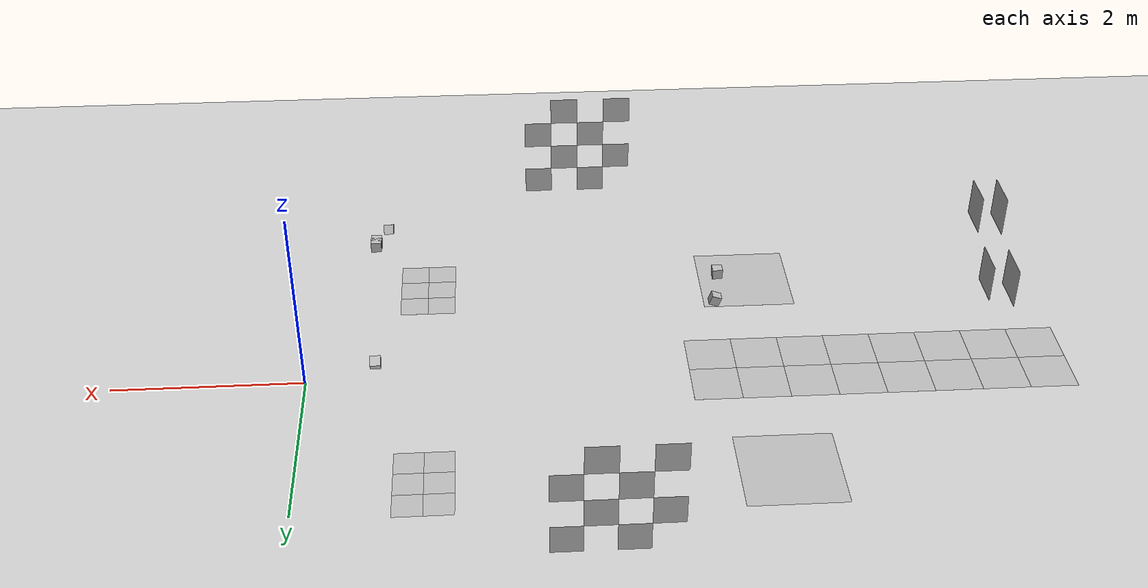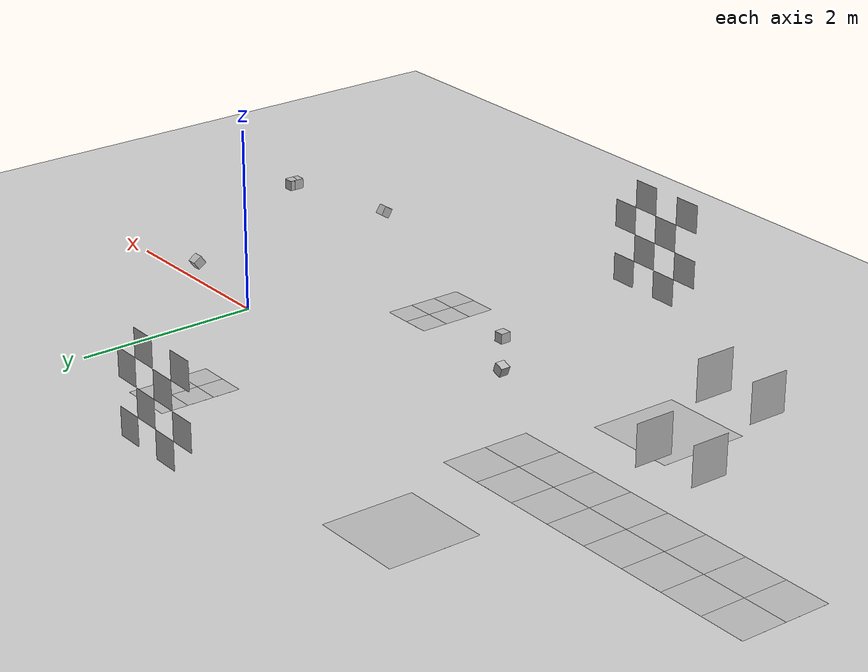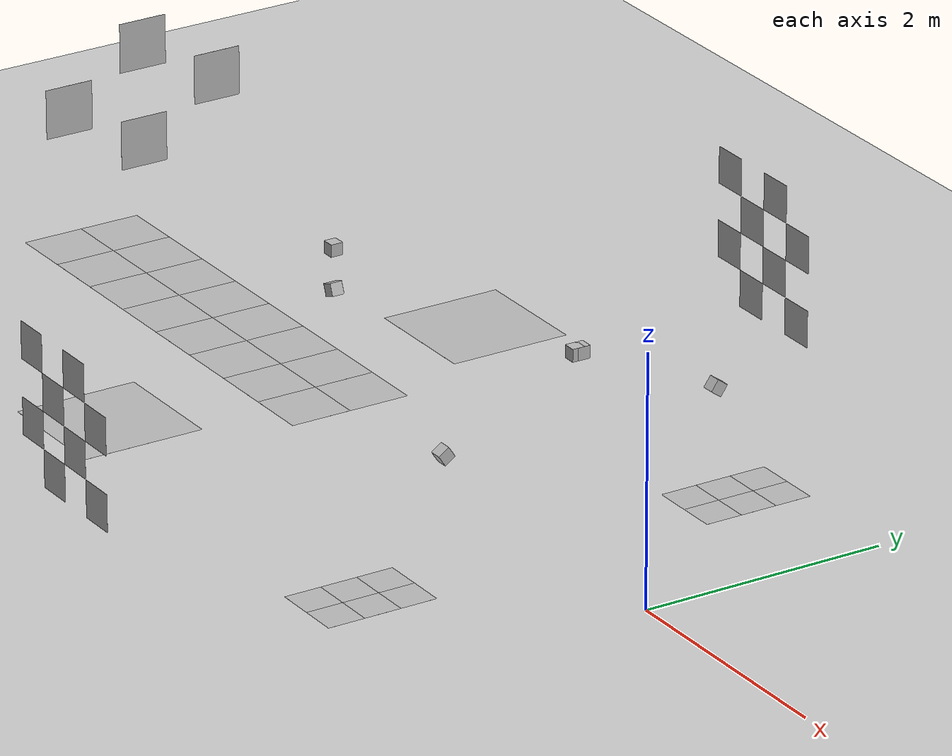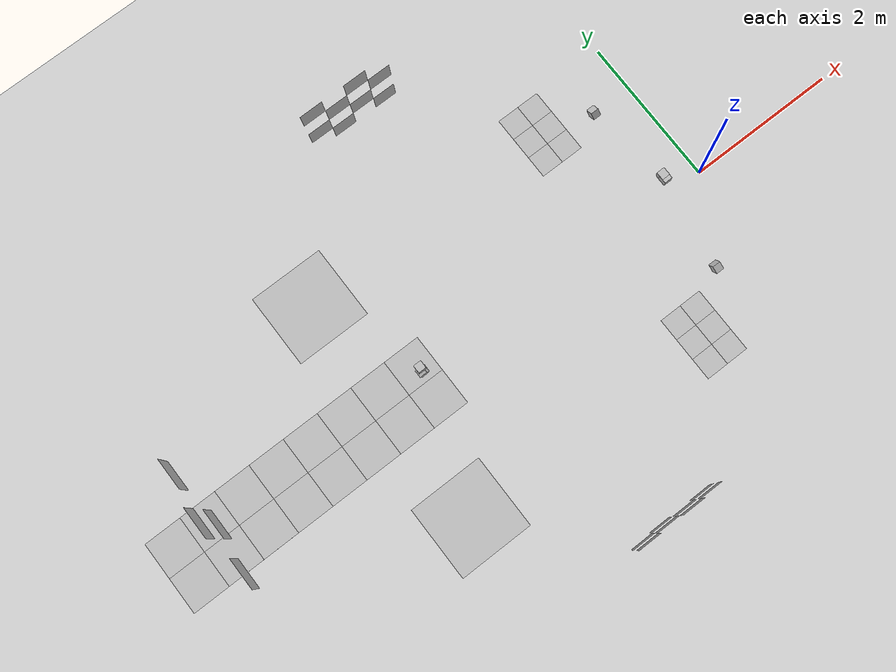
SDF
<sdf version="1.7">
 <world name="default">
  <model name="ground_plane">
   <pose>1.6 0 -0.001 0 -0 0</pose>
   <static>1</static>
   <link name="link">
    <collision name="collision">
     <geometry><plane><normal>0 0 1</normal><size>100 100</size></plane></geometry>
     <surface>
      <contact><collide_bitmask>65535</collide_bitmask></contact>
      <friction><ode><mu>100</mu><mu2>50</mu2></ode></friction>
     </surface>
    </collision>
    <visual name="visual">
     <cast_shadows>0</cast_shadows>
     <geometry><plane><normal>0 0 1</normal><size>100 100</size></plane></geometry>
     <material>
      <script><uri>file://media/materials/scripts/gazebo.material</uri><name>Gazebo/Grey</name></script>
     </material>
    </visual>
   </link>
  </model>
  <model name="Apriltag36_11_00008">
   <link name="main">
    <visual name="main_Visual">
     <geometry><box><size>0.5 0.5 0.0001</size></box></geometry>
     <material>
      <script>
       <uri>model://Apriltag36_11_00008/materials/scripts</uri>
       <uri>model://Apriltag36_11_00008/materials/textures</uri>
       <name>Apriltag36_11_00008</name>
      </script>
     </material>
    </visual>
    <collision name="collision"><geometry><box><size>0.5 0.5 0.0001</size></box></geometry></collision>
   </link>
   <static>1</static>
   <pose>-5.25 0.25 0 0 -0 0</pose>
  </model>
  <model name="Apriltag36_11_00009">
   <link name="main">
    <visual name="main_Visual">
     <geometry><box><size>0.5 0.5 0.0001</size></box></geometry>
     <material>
      <script>
       <uri>model://Apriltag36_11_00009/materials/scripts</uri>
       <uri>model://Apriltag36_11_00009/materials/textures</uri>
       <name>Apriltag36_11_00009</name>
      </script>
     </material>
    </visual>
    <collision name="collision"><geometry><box><size>0.5 0.5 0.0001</size></box></geometry></collision>
   </link>
   <static>1</static>
   <pose>-5.75 0.25 0 0 -0 0</pose>
  </model>
  <model name="Apriltag36_11_00010">
   <link name="main">
    <visual name="main_Visual">
     <geometry><box><size>0.5 0.5 0.0001</size></box></geometry>
     <material>
      <script>
       <uri>model://Apriltag36_11_00010/materials/scripts</uri>
       <uri>model://Apriltag36_11_00010/materials/textures</uri>
       <name>Apriltag36_11_00010</name>
      </script>
     </material>
    </visual>
    <collision name="collision"><geometry><box><size>0.5 0.5 0.0001</size></box></geometry></collision>
   </link>
   <static>1</static>
   <pose>-6.25 0.25 0 0 -0 0</pose>
  </model>
  <model name="Apriltag36_11_00011">
   <link name="main">
    <visual name="main_Visual">
     <geometry><box><size>0.5 0.5 0.0001</size></box></geometry>
     <material>
      <script>
       <uri>model://Apriltag36_11_00011/materials/scripts</uri>
       <uri>model://Apriltag36_11_00011/materials/textures</uri>
       <name>Apriltag36_11_00011</name>
      </script>
     </material>
    </visual>
    <collision name="collision"><geometry><box><size>0.5 0.5 0.0001</size></box></geometry></collision>
   </link>
   <static>1</static>
   <pose>-6.75 0.25 0 0 -0 0</pose>
  </model>
  <model name="Apriltag36_11_00012">
   <link name="main">
    <visual name="main_Visual">
     <geometry><box><size>0.5 0.5 0.0001</size></box></geometry>
     <material>
      <script>
       <uri>model://Apriltag36_11_00012/materials/scripts</uri>
       <uri>model://Apriltag36_11_00012/materials/textures</uri>
       <name>Apriltag36_11_00012</name>
      </script>
     </material>
    </visual>
    <collision name="collision"><geometry><box><size>0.5 0.5 0.0001</size></box></geometry></collision>
   </link>
   <static>1</static>
   <pose>-5.25 -0.25 0 0 -0 0</pose>
  </model>
  <model name="Apriltag36_11_00013">
   <link name="main">
    <visual name="main_Visual">
     <geometry><box><size>0.5 0.5 0.0001</size></box></geometry>
     <material>
      <script>
       <uri>model://Apriltag36_11_00013/materials/scripts</uri>
       <uri>model://Apriltag36_11_00013/materials/textures</uri>
       <name>Apriltag36_11_00013</name>
      </script>
     </material>
    </visual>
    <collision name="collision"><geometry><box><size>0.5 0.5 0.0001</size></box></geometry></collision>
   </link>
   <static>1</static>
   <pose>-5.75 -0.25 0 0 -0 0</pose>
  </model>
  <model name="Apriltag36_11_00014">
   <link name="main">
    <visual name="main_Visual">
     <geometry><box><size>0.5 0.5 0.0001</size></box></geometry>
     <material>
      <script>
       <uri>model://Apriltag36_11_00014/materials/scripts</uri>
       <uri>model://Apriltag36_11_00014/materials/textures</uri>
       <name>Apriltag36_11_00014</name>
      </script>
     </material>
    </visual>
    <collision name="collision"><geometry><box><size>0.5 0.5 0.0001</size></box></geometry></collision>
   </link>
   <static>1</static>
   <pose>-6.25 -0.25 0 0 -0 0</pose>
  </model>
  <model name="Apriltag36_11_00015">
   <link name="main">
    <visual name="main_Visual">
     <geometry><box><size>0.5 0.5 0.0001</size></box></geometry>
     <material>
      <script>
       <uri>model://Apriltag36_11_00015/materials/scripts</uri>
       <uri>model://Apriltag36_11_00015/materials/textures</uri>
       <name>Apriltag36_11_00015</name>
      </script>
     </material>
    </visual>
    <collision name="collision"><geometry><box><size>0.5 0.5 0.0001</size></box></geometry></collision>
   </link>
   <static>1</static>
   <pose>-6.75 -0.25 0 0 -0 0</pose>
  </model>
  <model name="Apriltag36_11_00020">
   <link name="main">
    <pose>0 0 0 3.14159 -1.5707 -0</pose>
    <visual name="main_Visual">
     <geometry><box><size>0.4 0.4 0.0001</size></box></geometry>
     <material>
      <script>
       <uri>model://Apriltag36_11_00020/materials/scripts</uri>
       <uri>model://Apriltag36_11_00020/materials/textures</uri>
       <name>Apriltag36_11_00020</name>
      </script>
     </material>
    </visual>
    <collision name="collision"><geometry><box><size>0.4 0.4 0.0001</size></box></geometry></collision>
   </link>
   <static>1</static>
   <pose>-7 0 1.9 0 -0 0</pose>
  </model>
  <model name="Apriltag36_11_00021">
   <link name="main">
    <pose>0 0 0 3.14159 -1.5707 -0</pose>
    <visual name="main_Visual">
     <geometry><box><size>0.4 0.4 0.0001</size></box></geometry>
     <material>
      <script>
       <uri>model://Apriltag36_11_00021/materials/scripts</uri>
       <uri>model://Apriltag36_11_00021/materials/textures</uri>
       <name>Apriltag36_11_00021</name>
      </script>
     </material>
    </visual>
    <collision name="collision"><geometry><box><size>0.4 0.4 0.0001</size></box></geometry></collision>
   </link>
   <static>1</static>
   <pose>-7 0.65 1.5 0 -0 0</pose>
  </model>
  <model name="Apriltag36_11_00022">
   <link name="main">
    <pose>0 0 0 3.14159 -1.5707 -0</pose>
    <visual name="main_Visual">
     <geometry><box><size>0.4 0.4 0.0001</size></box></geometry>
     <material>
      <script>
       <uri>model://Apriltag36_11_00022/materials/scripts</uri>
       <uri>model://Apriltag36_11_00022/materials/textures</uri>
       <name>Apriltag36_11_00022</name>
      </script>
     </material>
    </visual>
    <collision name="collision"><geometry><box><size>0.4 0.4 0.0001</size></box></geometry></collision>
   </link>
   <static>1</static>
   <pose>-7 -0.65 1.5 0 -0 0</pose>
  </model>
  <model name="Apriltag36_11_00023">
   <link name="main">
    <pose>0 0 0 3.14159 -1.5707 -0</pose>
    <visual name="main_Visual">
     <geometry><box><size>0.4 0.4 0.0001</size></box></geometry>
     <material>
      <script>
       <uri>model://Apriltag36_11_00023/materials/scripts</uri>
       <uri>model://Apriltag36_11_00023/materials/textures</uri>
       <name>Apriltag36_11_00023</name>
      </script>
     </material>
    </visual>
    <collision name="collision"><geometry><box><size>0.4 0.4 0.0001</size></box></geometry></collision>
   </link>
   <static>1</static>
   <pose>-7 0 1.1 0 -0 0</pose>
  </model>
  <model name="Apriltag36_11_00034">
   <link name="main">
    <pose>0 0 0 1.5707 -1.5707 0</pose>
    <visual name="main_Visual">
     <geometry><box><size>0.3 0.3 0.0001</size></box></geometry>
     <material>
      <script>
       <uri>model://Apriltag36_11_00034/materials/scripts</uri>
       <uri>model://Apriltag36_11_00034/materials/textures</uri>
       <name>Apriltag36_11_00034</name>
      </script>
     </material>
    </visual>
    <collision name="collision"><geometry><box><size>0.5 0.5 0.0001</size></box></geometry></collision>
   </link>
   <static>1</static>
   <pose>-2.85 3 1.45 0 -0 0</pose>
  </model>
  <model name="Apriltag36_11_00035">
   <link name="main">
    <pose>0 0 0 1.5707 -1.5707 0</pose>
    <visual name="main_Visual">
     <geometry><box><size>0.3 0.3 0.0001</size></box></geometry>
     <material>
      <script>
       <uri>model://Apriltag36_11_00035/materials/scripts</uri>
       <uri>model://Apriltag36_11_00035/materials/textures</uri>
       <name>Apriltag36_11_00035</name>
      </script>
     </material>
    </visual>
    <collision name="collision"><geometry><box><size>0.5 0.5 0.0001</size></box></geometry></collision>
   </link>
   <static>1</static>
   <pose>-2.55 3 1.15 0 -0 0</pose>
  </model>
  <model name="Apriltag36_11_00036">
   <link name="main">
    <pose>0 0 0 1.5707 -1.5707 0</pose>
    <visual name="main_Visual">
     <geometry><box><size>0.3 0.3 0.0001</size></box></geometry>
     <material>
      <script>
       <uri>model://Apriltag36_11_00036/materials/scripts</uri>
       <uri>model://Apriltag36_11_00036/materials/textures</uri>
       <name>Apriltag36_11_00036</name>
      </script>
     </material>
    </visual>
    <collision name="collision"><geometry><box><size>0.5 0.5 0.0001</size></box></geometry></collision>
   </link>
   <static>1</static>
   <pose>-3.15 3 1.15 0 -0 0</pose>
  </model>
  <model name="Apriltag36_11_00037">
   <link name="main">
    <pose>0 0 0 1.5707 -1.5707 0</pose>
    <visual name="main_Visual">
     <geometry><box><size>0.3 0.3 0.0001</size></box></geometry>
     <material>
      <script>
       <uri>model://Apriltag36_11_00037/materials/scripts</uri>
       <uri>model://Apriltag36_11_00037/materials/textures</uri>
       <name>Apriltag36_11_00037</name>
      </script>
     </material>
    </visual>
    <collision name="collision"><geometry><box><size>0.5 0.5 0.0001</size></box></geometry></collision>
   </link>
   <static>1</static>
   <pose>-2.55 3 0.55 0 -0 0</pose>
  </model>
  <model name="Apriltag36_11_00038">
   <link name="main">
    <pose>0 0 0 1.5707 -1.5707 0</pose>
    <visual name="main_Visual">
     <geometry><box><size>0.3 0.3 0.0001</size></box></geometry>
     <material>
      <script>
       <uri>model://Apriltag36_11_00038/materials/scripts</uri>
       <uri>model://Apriltag36_11_00038/materials/textures</uri>
       <name>Apriltag36_11_00038</name>
      </script>
     </material>
    </visual>
    <collision name="collision"><geometry><box><size>0.5 0.5 0.0001</size></box></geometry></collision>
   </link>
   <static>1</static>
   <pose>-2.85 3 0.85 0 -0 0</pose>
  </model>
  <model name="Apriltag36_11_00039">
   <link name="main">
    <pose>0 0 0 1.5707 -1.5707 0</pose>
    <visual name="main_Visual">
     <geometry><box><size>0.3 0.3 0.0001</size></box></geometry>
     <material>
      <script>
       <uri>model://Apriltag36_11_00039/materials/scripts</uri>
       <uri>model://Apriltag36_11_00039/materials/textures</uri>
       <name>Apriltag36_11_00039</name>
      </script>
     </material>
    </visual>
    <collision name="collision"><geometry><box><size>0.5 0.5 0.0001</size></box></geometry></collision>
   </link>
   <static>1</static>
   <pose>-3.15 3 0.55 0 -0 0</pose>
  </model>
  <model name="Apriltag36_11_00046">
   <link name="main">
    <pose>0 0 0 -1.5707 -1.5707 -0</pose>
    <visual name="main_Visual">
     <geometry><box><size>0.3 0.3 0.0001</size></box></geometry>
     <material>
      <script>
       <uri>model://Apriltag36_11_00046/materials/scripts</uri>
       <uri>model://Apriltag36_11_00046/materials/textures</uri>
       <name>Apriltag36_11_00046</name>
      </script>
     </material>
    </visual>
    <collision name="collision"><geometry><box><size>0.5 0.5 0.0001</size></box></geometry></collision>
   </link>
   <static>1</static>
   <pose>-2.85 -3 1.45 0 -0 0</pose>
  </model>
  <model name="Apriltag36_11_00047">
   <link name="main">
    <pose>0 0 0 -1.5707 -1.5707 -0</pose>
    <visual name="main_Visual">
     <geometry><box><size>0.3 0.3 0.0001</size></box></geometry>
     <material>
      <script>
       <uri>model://Apriltag36_11_00047/materials/scripts</uri>
       <uri>model://Apriltag36_11_00047/materials/textures</uri>
       <name>Apriltag36_11_00047</name>
      </script>
     </material>
    </visual>
    <collision name="collision"><geometry><box><size>0.5 0.5 0.0001</size></box></geometry></collision>
   </link>
   <static>1</static>
   <pose>-3.15 -3 1.15 0 -0 0</pose>
  </model>
  <model name="Apriltag36_11_00048">
   <link name="main">
    <pose>0 0 0 -1.5707 -1.5707 -0</pose>
    <visual name="main_Visual">
     <geometry><box><size>0.3 0.3 0.0001</size></box></geometry>
     <material>
      <script>
       <uri>model://Apriltag36_11_00048/materials/scripts</uri>
       <uri>model://Apriltag36_11_00048/materials/textures</uri>
       <name>Apriltag36_11_00048</name>
      </script>
     </material>
    </visual>
    <collision name="collision"><geometry><box><size>0.5 0.5 0.0001</size></box></geometry></collision>
   </link>
   <static>1</static>
   <pose>-3.15 -3 0.55 0 -0 0</pose>
  </model>
  <model name="Apriltag36_11_00049">
   <link name="main">
    <pose>0 0 0 -1.5707 -1.5707 -0</pose>
    <visual name="main_Visual">
     <geometry><box><size>0.3 0.3 0.0001</size></box></geometry>
     <material>
      <script>
       <uri>model://Apriltag36_11_00049/materials/scripts</uri>
       <uri>model://Apriltag36_11_00049/materials/textures</uri>
       <name>Apriltag36_11_00049</name>
      </script>
     </material>
    </visual>
    <collision name="collision"><geometry><box><size>0.5 0.5 0.0001</size></box></geometry></collision>
   </link>
   <static>1</static>
   <pose>-3.45 -3 1.45 0 -0 0</pose>
  </model>
  <model name="Apriltag36_11_00050">
   <link name="main">
    <pose>0 0 0 -1.5707 -1.5707 -0</pose>
    <visual name="main_Visual">
     <geometry><box><size>0.3 0.3 0.0001</size></box></geometry>
     <material>
      <script>
       <uri>model://Apriltag36_11_00050/materials/scripts</uri>
       <uri>model://Apriltag36_11_00050/materials/textures</uri>
       <name>Apriltag36_11_00050</name>
      </script>
     </material>
    </visual>
    <collision name="collision"><geometry><box><size>0.5 0.5 0.0001</size></box></geometry></collision>
   </link>
   <static>1</static>
   <pose>-2.85 -3 0.85 0 -0 0</pose>
  </model>
  <model name="Apriltag36_11_00051">
   <link name="main">
    <pose>0 0 0 -1.5707 -1.5707 -0</pose>
    <visual name="main_Visual">
     <geometry><box><size>0.3 0.3 0.0001</size></box></geometry>
     <material>
      <script>
       <uri>model://Apriltag36_11_00051/materials/scripts</uri>
       <uri>model://Apriltag36_11_00051/materials/textures</uri>
       <name>Apriltag36_11_00051</name>
      </script>
     </material>
    </visual>
    <collision name="collision"><geometry><box><size>0.5 0.5 0.0001</size></box></geometry></collision>
   </link>
   <static>1</static>
   <pose>-3.45 -3 0.85 0 -0 0</pose>
  </model>
  <model name="Apriltag36_11_00054">
   <link name="main">
    <visual name="main_Visual">
     <geometry><box><size>1 1 0.0001</size></box></geometry>
     <material>
      <script>
       <uri>model://Apriltag36_11_00054/materials/scripts</uri>
       <uri>model://Apriltag36_11_00054/materials/textures</uri>
       <name>Apriltag36_11_00054</name>
      </script>
     </material>
    </visual>
    <collision name="collision"><geometry><box><size>1 1 0.0001</size></box></geometry></collision>
   </link>
   <static>1</static>
   <pose>-4.8 1.6 0 0 -0 0</pose>
  </model>
  <model name="Apriltag36_11_00055">
   <link name="main">
    <visual name="main_Visual">
     <geometry><box><size>1 1 0.0001</size></box></geometry>
     <material>
      <script>
       <uri>model://Apriltag36_11_00055/materials/scripts</uri>
       <uri>model://Apriltag36_11_00055/materials/textures</uri>
       <name>Apriltag36_11_00055</name>
      </script>
     </material>
    </visual>
    <collision name="collision"><geometry><box><size>1 1 0.0001</size></box></geometry></collision>
   </link>
   <static>1</static>
   <pose>-4.8 -1.6 0 0 -0 0</pose>
  </model>
  <model name="Apriltag36_11_00059">
   <link name="main">
    <visual name="main_Visual">
     <geometry><box><size>0.3 0.3 0.0001</size></box></geometry>
     <material>
      <script>
       <uri>model://Apriltag36_11_00059/materials/scripts</uri>
       <uri>model://Apriltag36_11_00059/materials/textures</uri>
       <name>Apriltag36_11_00059</name>
      </script>
     </material>
    </visual>
    <collision name="collision"><geometry><box><size>0.3 0.3 0.0001</size></box></geometry></collision>
   </link>
   <static>1</static>
   <pose>-1.1 1.9 0 0 -0 0</pose>
  </model>
  <model name="Apriltag36_11_00060">
   <link name="main">
    <visual name="main_Visual">
     <geometry><box><size>0.3 0.3 0.0001</size></box></geometry>
     <material>
      <script>
       <uri>model://Apriltag36_11_00060/materials/scripts</uri>
       <uri>model://Apriltag36_11_00060/materials/textures</uri>
       <name>Apriltag36_11_00060</name>
      </script>
     </material>
    </visual>
    <collision name="collision"><geometry><box><size>0.3 0.3 0.0001</size></box></geometry></collision>
   </link>
   <static>1</static>
   <pose>-1.1 1.6 0 0 -0 0</pose>
  </model>
  <model name="Apriltag36_11_00061">
   <link name="main">
    <visual name="main_Visual">
     <geometry><box><size>0.3 0.3 0.0001</size></box></geometry>
     <material>
      <script>
       <uri>model://Apriltag36_11_00061/materials/scripts</uri>
       <uri>model://Apriltag36_11_00061/materials/textures</uri>
       <name>Apriltag36_11_00061</name>
      </script>
     </material>
    </visual>
    <collision name="collision"><geometry><box><size>0.3 0.3 0.0001</size></box></geometry></collision>
   </link>
   <static>1</static>
   <pose>-1.1 1.3 0 0 -0 0</pose>
  </model>
  <model name="Apriltag36_11_00062">
   <link name="main">
    <visual name="main_Visual">
     <geometry><box><size>0.3 0.3 0.0001</size></box></geometry>
     <material>
      <script>
       <uri>model://Apriltag36_11_00062/materials/scripts</uri>
       <uri>model://Apriltag36_11_00062/materials/textures</uri>
       <name>Apriltag36_11_00062</name>
      </script>
     </material>
    </visual>
    <collision name="collision"><geometry><box><size>0.3 0.3 0.0001</size></box></geometry></collision>
   </link>
   <static>1</static>
   <pose>-1.4 1.9 0 0 -0 0</pose>
  </model>
  <model name="Apriltag36_11_00063">
   <link name="main">
    <visual name="main_Visual">
     <geometry><box><size>0.3 0.3 0.0001</size></box></geometry>
     <material>
      <script>
       <uri>model://Apriltag36_11_00063/materials/scripts</uri>
       <uri>model://Apriltag36_11_00063/materials/textures</uri>
       <name>Apriltag36_11_00063</name>
      </script>
     </material>
    </visual>
    <collision name="collision"><geometry><box><size>0.3 0.3 0.0001</size></box></geometry></collision>
   </link>
   <static>1</static>
   <pose>-1.4 1.6 0 0 -0 0</pose>
  </model>
  <model name="Apriltag36_11_00064">
   <link name="main">
    <visual name="main_Visual">
     <geometry><box><size>0.3 0.3 0.0001</size></box></geometry>
     <material>
      <script>
       <uri>model://Apriltag36_11_00064/materials/scripts</uri>
       <uri>model://Apriltag36_11_00064/materials/textures</uri>
       <name>Apriltag36_11_00064</name>
      </script>
     </material>
    </visual>
    <collision name="collision"><geometry><box><size>0.3 0.3 0.0001</size></box></geometry></collision>
   </link>
   <static>1</static>
   <pose>-1.4 1.3 0 0 -0 0</pose>
  </model>
  <model name="Apriltag36_11_00068">
   <link name="main">
    <visual name="main_Visual">
     <geometry><box><size>0.3 0.3 0.0001</size></box></geometry>
     <material>
      <script>
       <uri>model://Apriltag36_11_00068/materials/scripts</uri>
       <uri>model://Apriltag36_11_00068/materials/textures</uri>
       <name>Apriltag36_11_00068</name>
      </script>
     </material>
    </visual>
    <collision name="collision"><geometry><box><size>0.3 0.3 0.0001</size></box></geometry></collision>
   </link>
   <static>1</static>
   <pose>-1.1 -1.9 0 0 -0 0</pose>
  </model>
  <model name="Apriltag36_11_00069">
   <link name="main">
    <visual name="main_Visual">
     <geometry><box><size>0.3 0.3 0.0001</size></box></geometry>
     <material>
      <script>
       <uri>model://Apriltag36_11_00069/materials/scripts</uri>
       <uri>model://Apriltag36_11_00069/materials/textures</uri>
       <name>Apriltag36_11_00069</name>
      </script>
     </material>
    </visual>
    <collision name="collision"><geometry><box><size>0.3 0.3 0.0001</size></box></geometry></collision>
   </link>
   <static>1</static>
   <pose>-1.1 -1.6 0 0 -0 0</pose>
  </model>
  <model name="Apriltag36_11_00070">
   <link name="main">
    <visual name="main_Visual">
     <geometry><box><size>0.3 0.3 0.0001</size></box></geometry>
     <material>
      <script>
       <uri>model://Apriltag36_11_00070/materials/scripts</uri>
       <uri>model://Apriltag36_11_00070/materials/textures</uri>
       <name>Apriltag36_11_00070</name>
      </script>
     </material>
    </visual>
    <collision name="collision"><geometry><box><size>0.3 0.3 0.0001</size></box></geometry></collision>
   </link>
   <static>1</static>
   <pose>-1.1 -1.3 0 0 -0 0</pose>
  </model>
  <model name="Apriltag36_11_00071">
   <link name="main">
    <visual name="main_Visual">
     <geometry><box><size>0.3 0.3 0.0001</size></box></geometry>
     <material>
      <script>
       <uri>model://Apriltag36_11_00071/materials/scripts</uri>
       <uri>model://Apriltag36_11_00071/materials/textures</uri>
       <name>Apriltag36_11_00071</name>
      </script>
     </material>
    </visual>
    <collision name="collision"><geometry><box><size>0.3 0.3 0.0001</size></box></geometry></collision>
   </link>
   <static>1</static>
   <pose>-1.4 -1.9 0 0 -0 0</pose>
  </model>
  <model name="Apriltag36_11_00072">
   <link name="main">
    <visual name="main_Visual">
     <geometry><box><size>0.3 0.3 0.0001</size></box></geometry>
     <material>
      <script>
       <uri>model://Apriltag36_11_00072/materials/scripts</uri>
       <uri>model://Apriltag36_11_00072/materials/textures</uri>
       <name>Apriltag36_11_00072</name>
      </script>
     </material>
    </visual>
    <collision name="collision"><geometry><box><size>0.3 0.3 0.0001</size></box></geometry></collision>
   </link>
   <static>1</static>
   <pose>-1.4 -1.6 0 0 -0 0</pose>
  </model>
  <model name="Apriltag36_11_00073">
   <link name="main">
    <visual name="main_Visual">
     <geometry><box><size>0.3 0.3 0.0001</size></box></geometry>
     <material>
      <script>
       <uri>model://Apriltag36_11_00073/materials/scripts</uri>
       <uri>model://Apriltag36_11_00073/materials/textures</uri>
       <name>Apriltag36_11_00073</name>
      </script>
     </material>
    </visual>
    <collision name="collision"><geometry><box><size>0.3 0.3 0.0001</size></box></geometry></collision>
   </link>
   <static>1</static>
   <pose>-1.4 -1.3 0 0 -0 0</pose>
  </model>
  <model name="front_wide">
   <pose>-0.85793 -0.008982 1.69 0 -0 0</pose>
   <link name="link">
    <inertial>
     <mass>0.1</mass>
     <inertia>
      <ixx>0.000166667</ixx>
      <iyy>0.000166667</iyy>
      <izz>0.000166667</izz>
      <ixy>0</ixy>
      <ixz>0</ixz>
      <iyz>0</iyz>
     </inertia>
    </inertial>
    <collision name="collision"><geometry><box><size>0.1 0.1 0.1</size></box></geometry></collision>
    <visual name="visual"><geometry><box><size>0.1 0.1 0.1</size></box></geometry></visual>
    <sensor name="camera" type="camera">
     <camera>
      <horizontal_fov>2.094</horizontal_fov>
      <image><width>3840</width><height>2160</height></image>
      <clip><near>0.1</near><far>100</far></clip>
      <distortion>
       <k1>-0.350999</k1>
       <k2>0.19209</k2>
       <k3>-0.0770118</k3>
       <p1>0</p1>
       <p2>0</p2>
       <center>0.49744 0.4991</center>
      </distortion>
      <noise><type>gaussian</type><mean>0</mean><stddev>0.007</stddev></noise>
     </camera>
     <plugin name="camera_controller" filename="libgazebo_ros_camera.so">
      <alwaysOn>1</alwaysOn>
      <updateRate>0.0</updateRate>
      <cameraName>rrbot/camera1</cameraName>
      <imageTopicName>image_raw</imageTopicName>
      <cameraInfoTopicName>camera_info</cameraInfoTopicName>
      <frameName>camera_link</frameName>
      <hackBaseline>0.0</hackBaseline>
      <distortionK1>-0.35099863115140095</distortionK1>
      <distortionK2>0.19209039110108211</distortionK2>
      <distortionK3>-0.07701177238709249</distortionK3>
      <distortionT1>0.0</distortionT1>
      <distortionT2>0.0</distortionT2>
     </plugin>
     <always_on>1</always_on>
     <update_rate>30</update_rate>
     <visualize>1</visualize>
    </sensor>
   </link>
   <static>1</static>
  </model>
  <model name="front_tele">
   <pose>-0.85988 -0.05442 1.69 0 -0 0</pose>
   <link name="link">
    <inertial>
     <mass>0.1</mass>
     <inertia>
      <ixx>0.000166667</ixx>
      <iyy>0.000166667</iyy>
      <izz>0.000166667</izz>
      <ixy>0</ixy>
      <ixz>0</ixz>
      <iyz>0</iyz>
     </inertia>
    </inertial>
    <collision name="collision"><geometry><box><size>0.1 0.1 0.1</size></box></geometry></collision>
    <visual name="visual"><geometry><box><size>0.1 0.1 0.1</size></box></geometry></visual>
    <sensor name="camera" type="camera">
     <camera>
      <horizontal_fov>0.5235</horizontal_fov>
      <image><width>3840</width><height>2160</height></image>
      <clip><near>0.1</near><far>200</far></clip>
      <distortion><k1>0</k1><k2>0</k2><k3>0</k3><p1>0</p1><p2>0</p2><center>0.49986 0.484568</center></distortion>
      <noise><type>gaussian</type><mean>0</mean><stddev>0.007</stddev></noise>
     </camera>
     <plugin name="camera_controller" filename="libgazebo_ros_camera.so">
      <alwaysOn>1</alwaysOn>
      <updateRate>0.0</updateRate>
      <cameraName>rrbot/front_tele</cameraName>
      <imageTopicName>image_raw</imageTopicName>
      <cameraInfoTopicName>camera_info</cameraInfoTopicName>
      <frameName>camera_link</frameName>
      <hackBaseline>0.0</hackBaseline>
      <focalLength>7319.646289474126</focalLength>
      <distortionK1>0.0</distortionK1>
      <distortionK2>0.0</distortionK2>
      <distortionK3>0.0</distortionK3>
      <distortionT1>0.0</distortionT1>
      <distortionT2>0.0</distortionT2>
     </plugin>
     <always_on>1</always_on>
     <update_rate>30</update_rate>
     <visualize>1</visualize>
    </sensor>
   </link>
   <static>1</static>
  </model>
  <model name="jetour_nrcs_right">
   <pose>-0.904 -1.124 1.14 1e-06 0.5729 -1.5707</pose>
   <link name="link">
    <inertial><mass>0.1</mass></inertial>
    <collision name="collision"><geometry><box><size>0.1 0.1 0.1</size></box></geometry></collision>
    <visual name="visual"><geometry><box><size>0.1 0.1 0.1</size></box></geometry></visual>
    <sensor name="camera" type="wideanglecamera">
     <camera>
      <horizontal_fov>3.40339</horizontal_fov>
      <image><width>1920</width><height>1536</height></image>
      <clip><near>0.1</near><far>100</far></clip>
      <lens>
       <type>stereographic</type>
       <scale_to_hfov>1</scale_to_hfov>
       <cutoff_angle>1.7</cutoff_angle>
       <env_texture_size>512</env_texture_size>
      </lens>
     </camera>
     <always_on>1</always_on>
     <update_rate>30</update_rate>
     <plugin name="camera_controller" filename="libgazebo_ros_camera.so">
      <alwaysOn>1</alwaysOn>
      <updateRate>0.0</updateRate>
      <cameraName>jetour_nrcs_right</cameraName>
      <imageTopicName>jetour_nrcs_right_image_raw</imageTopicName>
      <cameraInfoTopicName>jetour_nrcs_right_camera_info</cameraInfoTopicName>
      <frameName>jetour_nrcs_right_link</frameName>
      <hackBaseline>0.07</hackBaseline>
      <distortionK1>0.0</distortionK1>
      <distortionK2>0.0</distortionK2>
      <distortionK3>0.0</distortionK3>
      <distortionT1>0.0</distortionT1>
      <distortionT2>0.0</distortionT2>
     </plugin>
    </sensor>
   </link>
   <static>1</static>
  </model>
  <model name="jetour_nrcs_rear">
   <pose>-4.22438 0 0.906 -0 0.353 3.14159</pose>
   <link name="link">
    <inertial><mass>0.1</mass></inertial>
    <collision name="collision"><geometry><box><size>0.1 0.1 0.1</size></box></geometry></collision>
    <visual name="visual"><geometry><box><size>0.1 0.1 0.1</size></box></geometry></visual>
    <sensor name="camera" type="wideanglecamera">
     <camera>
      <horizontal_fov>3.40339</horizontal_fov>
      <image><width>1920</width><height>1536</height></image>
      <clip><near>0.1</near><far>100</far></clip>
      <lens>
       <type>stereographic</type>
       <scale_to_hfov>1</scale_to_hfov>
       <cutoff_angle>1.7</cutoff_angle>
       <env_texture_size>512</env_texture_size>
      </lens>
     </camera>
     <always_on>1</always_on>
     <update_rate>30</update_rate>
     <plugin name="camera_controller" filename="libgazebo_ros_camera.so">
      <alwaysOn>1</alwaysOn>
      <updateRate>0.0</updateRate>
      <cameraName>jetour_nrcs_rear</cameraName>
      <imageTopicName>jetour_nrcs_rear_image_raw</imageTopicName>
      <cameraInfoTopicName>jetour_nrcs_rear_camera_info</cameraInfoTopicName>
      <frameName>jetour_nrcs_rear_link</frameName>
      <hackBaseline>0.07</hackBaseline>
      <distortionK1>0.0</distortionK1>
      <distortionK2>0.0</distortionK2>
      <distortionK3>0.0</distortionK3>
      <distortionT1>0.0</distortionT1>
      <distortionT2>0.0</distortionT2>
     </plugin>
    </sensor>
   </link>
   <static>1</static>
  </model>
  <model name="jetour_nrcs_left">
   <pose>-0.856 1.14571 1.137 1e-06 0.6126 1.5707</pose>
   <link name="link">
    <inertial><mass>0.1</mass></inertial>
    <collision name="collision"><geometry><box><size>0.1 0.1 0.1</size></box></geometry></collision>
    <visual name="visual"><geometry><box><size>0.1 0.1 0.1</size></box></geometry></visual>
    <sensor name="camera" type="wideanglecamera">
     <camera>
      <horizontal_fov>3.40339</horizontal_fov>
      <image><width>1920</width><height>1536</height></image>
      <clip><near>0.1</near><far>100</far></clip>
      <lens>
       <type>stereographic</type>
       <scale_to_hfov>1</scale_to_hfov>
       <cutoff_angle>1.7</cutoff_angle>
       <env_texture_size>512</env_texture_size>
      </lens>
     </camera>
     <always_on>1</always_on>
     <update_rate>30</update_rate>
     <plugin name="camera_controller" filename="libgazebo_ros_camera.so">
      <alwaysOn>1</alwaysOn>
      <updateRate>0.0</updateRate>
      <cameraName>jetour_nrcs_left</cameraName>
      <imageTopicName>jetour_nrcs_left_image_raw</imageTopicName>
      <cameraInfoTopicName>jetour_nrcs_left_camera_info</cameraInfoTopicName>
      <frameName>jetour_nrcs_left_link</frameName>
      <hackBaseline>0.07</hackBaseline>
      <distortionK1>0.0</distortionK1>
      <distortionK2>0.0</distortionK2>
      <distortionK3>0.0</distortionK3>
      <distortionT1>0.0</distortionT1>
      <distortionT2>0.0</distortionT2>
     </plugin>
    </sensor>
   </link>
   <static>1</static>
  </model>
  <model name="Apriltag36_11_00012_clone">
   <link name="main">
    <visual name="main_Visual">
     <geometry><box><size>0.5 0.5 0.0001</size></box></geometry>
     <material>
      <script>
       <uri>model://Apriltag36_11_00012/materials/scripts</uri>
       <uri>model://Apriltag36_11_00012/materials/textures</uri>
       <name>Apriltag36_11_00012</name>
      </script>
     </material>
    </visual>
    <collision name="collision"><geometry><box><size>0.5 0.5 0.0001</size></box></geometry></collision>
   </link>
   <static>1</static>
   <pose>-4.75 -0.25 0 0 -0 0</pose>
  </model>
  <model name="Apriltag36_11_00012_clone_0">
   <link name="main">
    <visual name="main_Visual">
     <geometry><box><size>0.5 0.5 0.0001</size></box></geometry>
     <material>
      <script>
       <uri>model://Apriltag36_11_00012/materials/scripts</uri>
       <uri>model://Apriltag36_11_00012/materials/textures</uri>
       <name>Apriltag36_11_00012</name>
      </script>
     </material>
    </visual>
    <collision name="collision"><geometry><box><size>0.5 0.5 0.0001</size></box></geometry></collision>
   </link>
   <static>1</static>
   <pose>-4.25 -0.25 0 0 -0 0</pose>
  </model>
  <model name="Apriltag36_11_00012_clone_1">
   <link name="main">
    <visual name="main_Visual">
     <geometry><box><size>0.5 0.5 0.0001</size></box></geometry>
     <material>
      <script>
       <uri>model://Apriltag36_11_00012/materials/scripts</uri>
       <uri>model://Apriltag36_11_00012/materials/textures</uri>
       <name>Apriltag36_11_00012</name>
      </script>
     </material>
    </visual>
    <collision name="collision"><geometry><box><size>0.5 0.5 0.0001</size></box></geometry></collision>
   </link>
   <static>1</static>
   <pose>-4.75 0.25 0 0 -0 0</pose>
  </model>
  <model name="Apriltag36_11_00012_clone_2">
   <link name="main">
    <visual name="main_Visual">
     <geometry><box><size>0.5 0.5 0.0001</size></box></geometry>
     <material>
      <script>
       <uri>model://Apriltag36_11_00012/materials/scripts</uri>
       <uri>model://Apriltag36_11_00012/materials/textures</uri>
       <name>Apriltag36_11_00012</name>
      </script>
     </material>
    </visual>
    <collision name="collision"><geometry><box><size>0.5 0.5 0.0001</size></box></geometry></collision>
   </link>
   <static>1</static>
   <pose>-4.25 0.25 0 0 -0 0</pose>
  </model>
  <model name="Apriltag36_11_00036_clone">
   <link name="main">
    <pose>0 0 0 1.5707 -1.5707 0</pose>
    <visual name="main_Visual">
     <geometry><box><size>0.3 0.3 0.0001</size></box></geometry>
     <material>
      <script>
       <uri>model://Apriltag36_11_00036/materials/scripts</uri>
       <uri>model://Apriltag36_11_00036/materials/textures</uri>
       <name>Apriltag36_11_00036</name>
      </script>
     </material>
    </visual>
    <collision name="collision"><geometry><box><size>0.5 0.5 0.0001</size></box></geometry></collision>
   </link>
   <static>1</static>
   <pose>-3.45 3 1.45 0 -0 0</pose>
  </model>
  <model name="Apriltag36_11_00036_clone_0">
   <link name="main">
    <pose>0 0 0 1.5707 -1.5707 0</pose>
    <visual name="main_Visual">
     <geometry><box><size>0.3 0.3 0.0001</size></box></geometry>
     <material>
      <script>
       <uri>model://Apriltag36_11_00036/materials/scripts</uri>
       <uri>model://Apriltag36_11_00036/materials/textures</uri>
       <name>Apriltag36_11_00036</name>
      </script>
     </material>
    </visual>
    <collision name="collision"><geometry><box><size>0.5 0.5 0.0001</size></box></geometry></collision>
   </link>
   <static>1</static>
   <pose>-3.45 3 0.85 0 -0 0</pose>
  </model>
  <model name="Apriltag36_11_00046_clone">
   <link name="main">
    <pose>0 0 0 -1.5707 -1.5707 -0</pose>
    <visual name="main_Visual">
     <geometry><box><size>0.3 0.3 0.0001</size></box></geometry>
     <material>
      <script>
       <uri>model://Apriltag36_11_00046/materials/scripts</uri>
       <uri>model://Apriltag36_11_00046/materials/textures</uri>
       <name>Apriltag36_11_00046</name>
      </script>
     </material>
    </visual>
    <collision name="collision"><geometry><box><size>0.5 0.5 0.0001</size></box></geometry></collision>
   </link>
   <static>1</static>
   <pose>-2.55 -3 1.15 0 -0 0</pose>
  </model>
  <model name="Apriltag36_11_00046_clone_0">
   <link name="main">
    <pose>0 0 0 -1.5707 -1.5707 -0</pose>
    <visual name="main_Visual">
     <geometry><box><size>0.3 0.3 0.0001</size></box></geometry>
     <material>
      <script>
       <uri>model://Apriltag36_11_00046/materials/scripts</uri>
       <uri>model://Apriltag36_11_00046/materials/textures</uri>
       <name>Apriltag36_11_00046</name>
      </script>
     </material>
    </visual>
    <collision name="collision"><geometry><box><size>0.5 0.5 0.0001</size></box></geometry></collision>
   </link>
   <static>1</static>
   <pose>-2.55 -3 0.55 0 -0 0</pose>
  </model>
  <model name="back_around_cam">
   <pose>-4.22773 0 1.23655 0 0.001378 3.14159</pose>
   <link name="link">
    <inertial>
     <mass>0.1</mass>
     <inertia>
      <ixx>0.000166667</ixx>
      <iyy>0.000166667</iyy>
      <izz>0.000166667</izz>
      <ixy>0</ixy>
      <ixz>0</ixz>
      <iyz>0</iyz>
     </inertia>
    </inertial>
    <collision name="collision"><geometry><box><size>0.1 0.1 0.1</size></box></geometry></collision>
    <visual name="visual"><geometry><box><size>0.1 0.1 0.1</size></box></geometry></visual>
    <sensor name="camera" type="camera">
     <camera>
      <image><width>1920</width><height>1280</height></image>
      <clip><near>0.1</near><far>100</far></clip>
      <distortion>
       <k1>-0.5008</k1>
       <k2>0.2669</k2>
       <k3>-0.1188</k3>
       <p1>0.00016716</p1>
       <p2>-0.00010342</p2>
       <center>0.48462 0.524125</center>
      </distortion>
      <noise><type>gaussian</type><mean>0</mean><stddev>0.007</stddev></noise>
      <horizontal_fov>1.047</horizontal_fov>
     </camera>
     <plugin name="camera_controller" filename="libgazebo_ros_camera.so">
      <alwaysOn>1</alwaysOn>
      <updateRate>0.0</updateRate>
      <cameraName>back_around_cam</cameraName>
      <imageTopicName>back_around_cam_image_raw</imageTopicName>
      <cameraInfoTopicName>back_around_cam_camera_info</cameraInfoTopicName>
      <frameName>camera_link</frameName>
      <hackBaseline>0.0</hackBaseline>
      <Cx>930.47</Cx>
      <Cy>670.88</Cy>
      <focalLength>1967.3</focalLength>
      <distortionK1>-0.5008</distortionK1>
      <distortionK2>>0.2669</distortionK2>
      <distortionK3>-0.1188</distortionK3>
      <distortionT1>0.00016716</distortionT1>
      <distortionT2>-0.00010342</distortionT2>
     </plugin>
     <always_on>1</always_on>
     <update_rate>30</update_rate>
     <visualize>1</visualize>
    </sensor>
   </link>
   <static>1</static>
  </model>
  <model name="Apriltag36_11_00015_clone">
   <link name="main">
    <visual name="main_Visual">
     <geometry><box><size>0.5 0.5 0.0001</size></box></geometry>
     <material>
      <script>
       <uri>model://Apriltag36_11_00015/materials/scripts</uri>
       <uri>model://Apriltag36_11_00015/materials/textures</uri>
       <name>Apriltag36_11_00015</name>
      </script>
     </material>
    </visual>
    <collision name="collision"><geometry><box><size>0.5 0.5 0.0001</size></box></geometry></collision>
   </link>
   <static>1</static>
   <pose>-7.25 -0.25 0 0 -0 0</pose>
  </model>
  <model name="Apriltag36_11_00015_clone_0">
   <link name="main">
    <visual name="main_Visual">
     <geometry><box><size>0.5 0.5 0.0001</size></box></geometry>
     <material>
      <script>
       <uri>model://Apriltag36_11_00015/materials/scripts</uri>
       <uri>model://Apriltag36_11_00015/materials/textures</uri>
       <name>Apriltag36_11_00015</name>
      </script>
     </material>
    </visual>
    <collision name="collision"><geometry><box><size>0.5 0.5 0.0001</size></box></geometry></collision>
   </link>
   <static>1</static>
   <pose>-7.25 0.25 0 0 -0 0</pose>
  </model>
  <model name="Apriltag36_11_00015_clone_1">
   <link name="main">
    <visual name="main_Visual">
     <geometry><box><size>0.5 0.5 0.0001</size></box></geometry>
     <material>
      <script>
       <uri>model://Apriltag36_11_00015/materials/scripts</uri>
       <uri>model://Apriltag36_11_00015/materials/textures</uri>
       <name>Apriltag36_11_00015</name>
      </script>
     </material>
    </visual>
    <collision name="collision"><geometry><box><size>0.5 0.5 0.0001</size></box></geometry></collision>
   </link>
   <static>1</static>
   <pose>-7.75 -0.25 0 0 -0 0</pose>
  </model>
  <model name="Apriltag36_11_00015_clone_2">
   <link name="main">
    <visual name="main_Visual">
     <geometry><box><size>0.5 0.5 0.0001</size></box></geometry>
     <material>
      <script>
       <uri>model://Apriltag36_11_00015/materials/scripts</uri>
       <uri>model://Apriltag36_11_00015/materials/textures</uri>
       <name>Apriltag36_11_00015</name>
      </script>
     </material>
    </visual>
    <collision name="collision"><geometry><box><size>0.5 0.5 0.0001</size></box></geometry></collision>
   </link>
   <static>1</static>
   <pose>-7.75 0.25 0 0 -0 0</pose>
  </model>
 </world>
</sdf>
